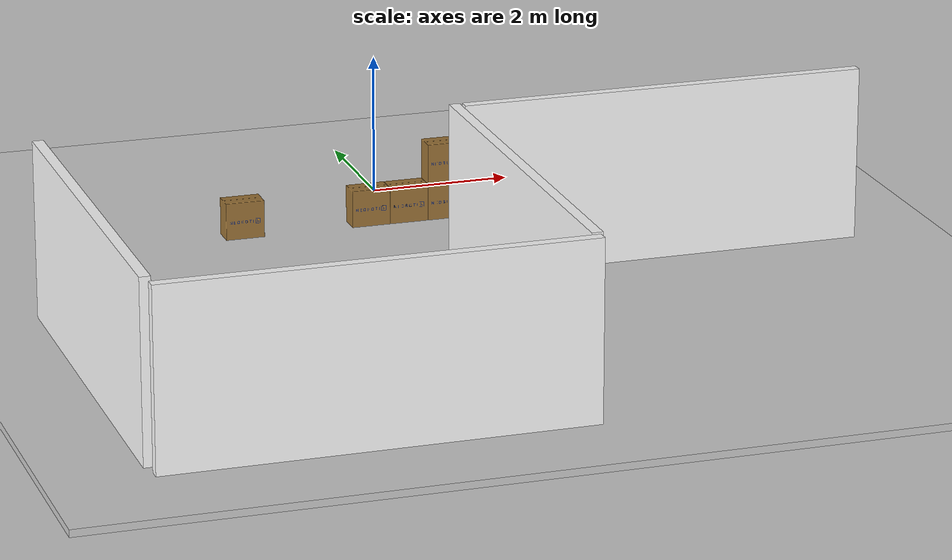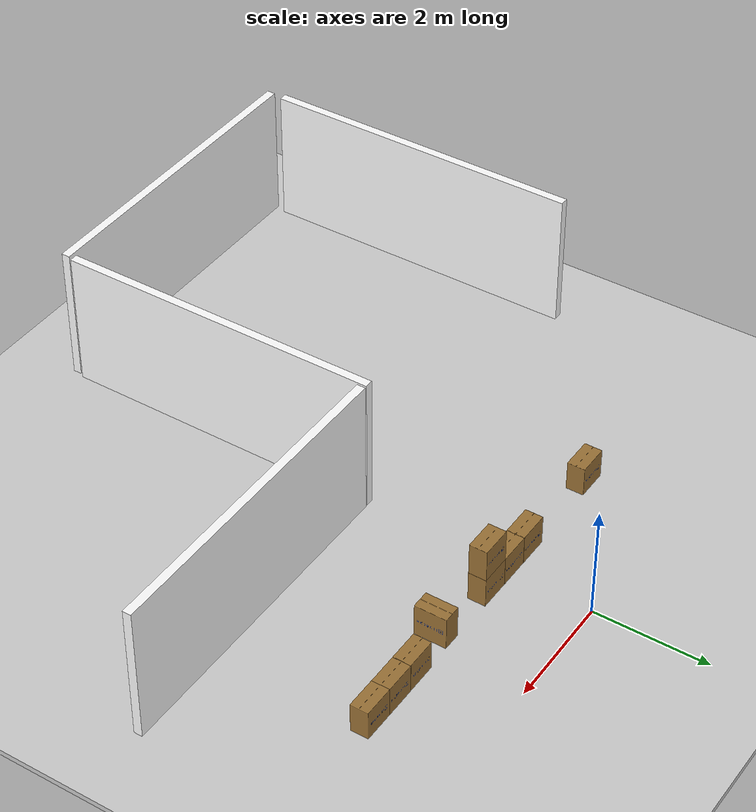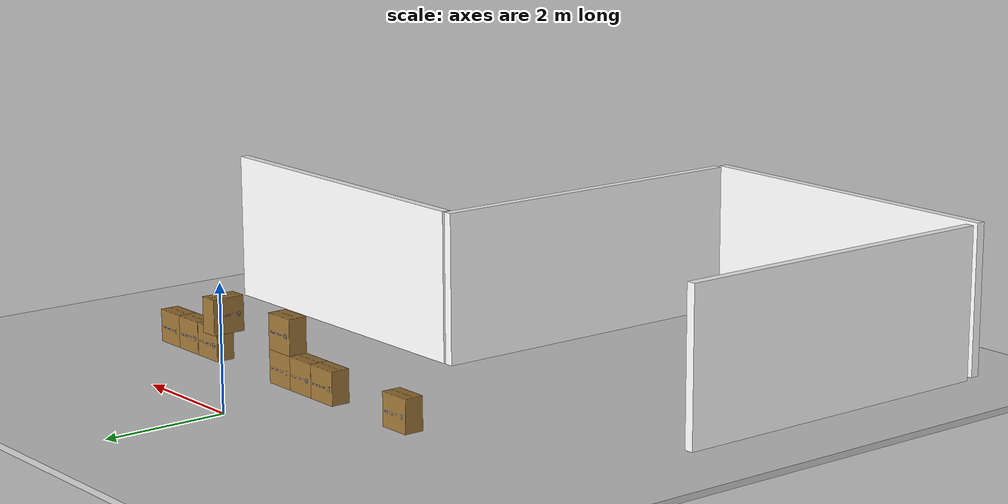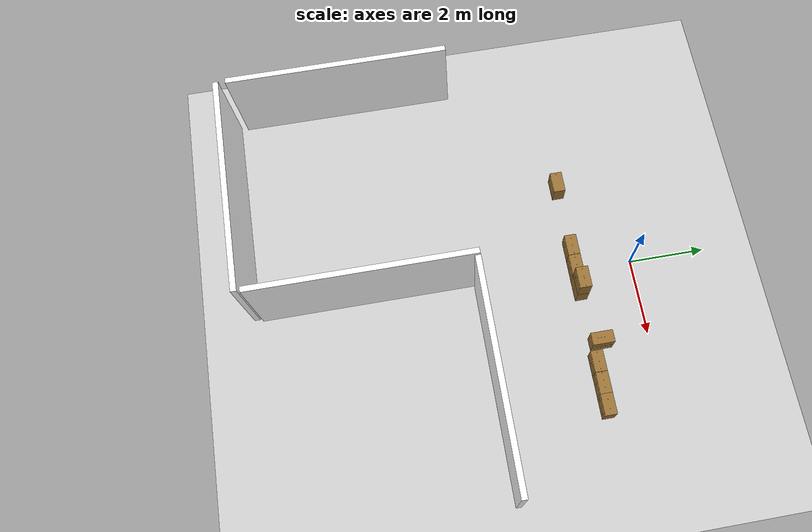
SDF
<sdf version="1.9">
 <world name="default">
  <model name="ground_plane">
   <static>true</static>
   <link name="link">
    <collision name="collision">
     <geometry><plane><normal>0 0 1</normal><size>100 100</size></plane></geometry>
    </collision>
    <visual name="visual">
     <geometry><plane><normal>0 0 1</normal><size>100 100</size></plane></geometry>
     <material>
      <ambient>0.8 0.8 0.8 1</ambient>
      <diffuse>0.8 0.8 0.8 1</diffuse>
      <specular>0.8 0.8 0.8 1</specular>
     </material>
    </visual>
    <inertial>
     <mass>1</mass>
     <inertia><ixx>1</ixx><ixy>0</ixy><ixz>0</ixz><iyy>1</iyy><iyz>0</iyz><izz>1</izz></inertia>
    </inertial>
   </link>
  </model>
  <model name="office_env_w3">
   <pose>2.8655 -4.162 1.25 0 -0 0</pose>
   <link name="Wall_10">
    <visual name="Wall_10_Visual_0">
     <geometry><box><size>5.733 0.15 2.5</size></box></geometry>
     <material><ambient>0.2 0.2 0.2 1</ambient><diffuse>1 1 1 1</diffuse><specular>1 1 1 1</specular></material>
     <meta><layer>0</layer></meta>
    </visual>
    <collision name="Wall_10_Collision_0"><geometry><box><size>5.733 0.15 2.5</size></box></geometry></collision>
    <inertial>
     <mass>1</mass>
     <inertia><ixx>1</ixx><ixy>0</ixy><ixz>0</ixz><iyy>1</iyy><iyz>0</iyz><izz>1</izz></inertia>
    </inertial>
   </link>
   <static>true</static>
  </model>
  <model name="office_env_w3_clone">
   <pose>-0.116895 -6.96099 1.25 0 -0 1.57</pose>
   <link name="Wall_10">
    <visual name="Wall_10_Visual_0">
     <geometry><box><size>5.733 0.15 2.5</size></box></geometry>
     <material><ambient>0.2 0.2 0.2 1</ambient><diffuse>1 1 1 1</diffuse><specular>1 1 1 1</specular></material>
     <meta><layer>0</layer></meta>
    </visual>
    <collision name="Wall_10_Collision_0"><geometry><box><size>5.733 0.15 2.5</size></box></geometry></collision>
    <inertial>
     <mass>1</mass>
     <inertia><ixx>1</ixx><ixy>0</ixy><ixz>0</ixz><iyy>1</iyy><iyz>0</iyz><izz>1</izz></inertia>
    </inertial>
   </link>
   <static>true</static>
  </model>
  <model name="office_env_w3_clone_clone">
   <pose>-5.82695 -6.85682 1.25 0 -0 1.57</pose>
   <link name="Wall_10">
    <visual name="Wall_10_Visual_0">
     <geometry><box><size>5.733 0.15 2.5</size></box></geometry>
     <material><ambient>0.2 0.2 0.2 1</ambient><diffuse>1 1 1 1</diffuse><specular>1 1 1 1</specular></material>
     <meta><layer>0</layer></meta>
    </visual>
    <collision name="Wall_10_Collision_0"><geometry><box><size>5.733 0.15 2.5</size></box></geometry></collision>
    <inertial>
     <mass>1</mass>
     <inertia><ixx>1</ixx><ixy>0</ixy><ixz>0</ixz><iyy>1</iyy><iyz>0</iyz><izz>1</izz></inertia>
    </inertial>
   </link>
   <static>true</static>
  </model>
  <model name="office_env_w3_clone_0">
   <pose>-2.96341 -9.9742 1.25 0 -0 0</pose>
   <link name="Wall_10">
    <visual name="Wall_10_Visual_0">
     <geometry><box><size>5.733 0.15 2.5</size></box></geometry>
     <material><ambient>0.2 0.2 0.2 1</ambient><diffuse>1 1 1 1</diffuse><specular>1 1 1 1</specular></material>
     <meta><layer>0</layer></meta>
    </visual>
    <collision name="Wall_10_Collision_0"><geometry><box><size>5.733 0.15 2.5</size></box></geometry></collision>
    <inertial>
     <mass>1</mass>
     <inertia><ixx>1</ixx><ixy>0</ixy><ixz>0</ixz><iyy>1</iyy><iyz>0</iyz><izz>1</izz></inertia>
    </inertial>
   </link>
   <static>true</static>
  </model>
  <model name="neobotix_box_3_2_2">
   <link name="link_1">
    <visual name="visual">
     <geometry>
      <mesh>
       <uri>file:///home/pradheep/iron_ws/src/neo_simulation2/models/neo_office_box/model://neo_office_box/meshes/model.dae</uri>
       <scale>0.1 0.1 0.1</scale>
      </mesh>
     </geometry>
    </visual>
    <collision name="collision">
     <geometry>
      <mesh>
       <uri>file:///home/pradheep/iron_ws/src/neo_simulation2/models/neo_office_box/model://neo_office_box/meshes/model.dae</uri>
       <scale>0.1 0.1 0.1</scale>
      </mesh>
     </geometry>
    </collision>
    <inertial>
     <mass>1</mass>
     <inertia><ixx>1</ixx><ixy>0</ixy><ixz>0</ixz><iyy>1</iyy><iyz>0</iyz><izz>1</izz></inertia>
    </inertial>
   </link>
   <pose>3.72429 -1.53119 0.294325 0 -0 1.57</pose>
   <static>false</static>
  </model>
  <model name="neobotix_box_3_2_2_1">
   <link name="link_1">
    <visual name="visual">
     <geometry>
      <mesh>
       <uri>file:///home/pradheep/iron_ws/src/neo_simulation2/models/neo_office_box/model://neo_office_box/meshes/model.dae</uri>
       <scale>0.1 0.1 0.1</scale>
      </mesh>
     </geometry>
    </visual>
    <collision name="collision">
     <geometry>
      <mesh>
       <uri>file:///home/pradheep/iron_ws/src/neo_simulation2/models/neo_office_box/model://neo_office_box/meshes/model.dae</uri>
       <scale>0.1 0.1 0.1</scale>
      </mesh>
     </geometry>
    </collision>
    <inertial>
     <mass>1</mass>
     <inertia><ixx>1</ixx><ixy>0</ixy><ixz>0</ixz><iyy>1</iyy><iyz>0</iyz><izz>1</izz></inertia>
    </inertial>
   </link>
   <pose>3.17712 -1.52963 0.294325 0 -0 1.57</pose>
   <static>false</static>
  </model>
  <model name="neobotix_box_3_2_2_1_1">
   <link name="link_1">
    <visual name="visual">
     <geometry>
      <mesh>
       <uri>file:///home/pradheep/iron_ws/src/neo_simulation2/models/neo_office_box/model://neo_office_box/meshes/model.dae</uri>
       <scale>0.1 0.1 0.1</scale>
      </mesh>
     </geometry>
    </visual>
    <collision name="collision">
     <geometry>
      <mesh>
       <uri>file:///home/pradheep/iron_ws/src/neo_simulation2/models/neo_office_box/model://neo_office_box/meshes/model.dae</uri>
       <scale>0.1 0.1 0.1</scale>
      </mesh>
     </geometry>
    </collision>
    <inertial>
     <mass>1</mass>
     <inertia><ixx>1</ixx><ixy>0</ixy><ixz>0</ixz><iyy>1</iyy><iyz>0</iyz><izz>1</izz></inertia>
    </inertial>
   </link>
   <pose>3.17712 -1.52963 0.294325 0 -0 1.57</pose>
   <static>false</static>
  </model>
  <model name="neobotix_box_3_2_2_1_1_1">
   <link name="link_1">
    <visual name="visual">
     <geometry>
      <mesh>
       <uri>file:///home/pradheep/iron_ws/src/neo_simulation2/models/neo_office_box/model://neo_office_box/meshes/model.dae</uri>
       <scale>0.1 0.1 0.1</scale>
      </mesh>
     </geometry>
    </visual>
    <collision name="collision">
     <geometry>
      <mesh>
       <uri>file:///home/pradheep/iron_ws/src/neo_simulation2/models/neo_office_box/model://neo_office_box/meshes/model.dae</uri>
       <scale>0.1 0.1 0.1</scale>
      </mesh>
     </geometry>
    </collision>
    <inertial>
     <mass>1</mass>
     <inertia><ixx>1</ixx><ixy>0</ixy><ixz>0</ixz><iyy>1</iyy><iyz>0</iyz><izz>1</izz></inertia>
    </inertial>
   </link>
   <pose>2.61748 -1.53101 0.294325 0 -0 1.57</pose>
   <static>false</static>
  </model>
  <model name="neobotix_box_3_1_1_1">
   <link name="link_1">
    <visual name="visual">
     <geometry>
      <mesh>
       <uri>file:///home/pradheep/iron_ws/src/neo_simulation2/models/neo_office_box/model://neo_office_box/meshes/model.dae</uri>
       <scale>0.1 0.1 0.1</scale>
      </mesh>
     </geometry>
    </visual>
    <collision name="collision">
     <geometry>
      <mesh>
       <uri>file:///home/pradheep/iron_ws/src/neo_simulation2/models/neo_office_box/model://neo_office_box/meshes/model.dae</uri>
       <scale>0.1 0.1 0.1</scale>
      </mesh>
     </geometry>
    </collision>
    <inertial>
     <mass>1</mass>
     <inertia><ixx>1</ixx><ixy>0</ixy><ixz>0</ixz><iyy>1</iyy><iyz>0</iyz><izz>1</izz></inertia>
    </inertial>
   </link>
   <pose>2.17786 -1.4122 0.86811 0 -0 0</pose>
   <static>false</static>
  </model>
  <model name="neobotix_box_3_2_1_1_2">
   <link name="link_1">
    <visual name="visual">
     <geometry>
      <mesh>
       <uri>file:///home/pradheep/iron_ws/src/neo_simulation2/models/neo_office_box/model://neo_office_box/meshes/model.dae</uri>
       <scale>0.1 0.1 0.1</scale>
      </mesh>
     </geometry>
    </visual>
    <collision name="collision">
     <geometry>
      <mesh>
       <uri>file:///home/pradheep/iron_ws/src/neo_simulation2/models/neo_office_box/model://neo_office_box/meshes/model.dae</uri>
       <scale>0.1 0.1 0.1</scale>
      </mesh>
     </geometry>
    </collision>
    <inertial>
     <mass>1</mass>
     <inertia><ixx>1</ixx><ixy>0</ixy><ixz>0</ixz><iyy>1</iyy><iyz>0</iyz><izz>1</izz></inertia>
    </inertial>
   </link>
   <pose>0.556968 -1.52968 0.872435 0 -0 1.57</pose>
   <static>false</static>
  </model>
  <model name="ground_plane_1">
   <static>true</static>
   <link name="link">
    <collision name="collision">
     <geometry><plane><normal>0 0 1</normal><size>100 100</size></plane></geometry>
    </collision>
    <visual name="visual">
     <geometry><plane><normal>0 0 1</normal><size>100 100</size></plane></geometry>
     <material>
      <ambient>0.8 0.8 0.8 1</ambient>
      <diffuse>0.8 0.8 0.8 1</diffuse>
      <specular>0.8 0.8 0.8 1</specular>
     </material>
    </visual>
    <inertial>
     <mass>1</mass>
     <inertia><ixx>1</ixx><ixy>0</ixy><ixz>0</ixz><iyy>1</iyy><iyz>0</iyz><izz>1</izz></inertia>
    </inertial>
   </link>
   <pose>-0.115089 -1.42822 0 0 -0 0</pose>
  </model>
  <model name="neobotix_box_3_2_1_1_2_1">
   <link name="link_1">
    <visual name="visual">
     <geometry>
      <mesh>
       <uri>file:///home/pradheep/iron_ws/src/neo_simulation2/models/neo_office_box/model://neo_office_box/meshes/model.dae</uri>
       <scale>0.1 0.1 0.1</scale>
      </mesh>
     </geometry>
    </visual>
    <collision name="collision">
     <geometry>
      <mesh>
       <uri>file:///home/pradheep/iron_ws/src/neo_simulation2/models/neo_office_box/model://neo_office_box/meshes/model.dae</uri>
       <scale>0.1 0.1 0.1</scale>
      </mesh>
     </geometry>
    </collision>
    <inertial>
     <mass>1</mass>
     <inertia><ixx>1</ixx><ixy>0</ixy><ixz>0</ixz><iyy>1</iyy><iyz>0</iyz><izz>1</izz></inertia>
    </inertial>
   </link>
   <pose>0.001747 -1.52761 0.294325 0 -0 1.57</pose>
   <static>false</static>
  </model>
  <model name="neobotix_box_3_2_1_1_2_1_1_1">
   <link name="link_1">
    <visual name="visual">
     <geometry>
      <mesh>
       <uri>file:///home/pradheep/iron_ws/src/neo_simulation2/models/neo_office_box/model://neo_office_box/meshes/model.dae</uri>
       <scale>0.1 0.1 0.1</scale>
      </mesh>
     </geometry>
    </visual>
    <collision name="collision">
     <geometry>
      <mesh>
       <uri>file:///home/pradheep/iron_ws/src/neo_simulation2/models/neo_office_box/model://neo_office_box/meshes/model.dae</uri>
       <scale>0.1 0.1 0.1</scale>
      </mesh>
     </geometry>
    </collision>
    <inertial>
     <mass>1</mass>
     <inertia><ixx>1</ixx><ixy>0</ixy><ixz>0</ixz><iyy>1</iyy><iyz>0</iyz><izz>1</izz></inertia>
    </inertial>
   </link>
   <pose>-0.557713 -1.52582 0.294325 0 -0 1.57</pose>
   <static>false</static>
  </model>
  <model name="neobotix_box_3_2_1_1_2_1_1_2">
   <link name="link_1">
    <visual name="visual">
     <geometry>
      <mesh>
       <uri>file:///home/pradheep/iron_ws/src/neo_simulation2/models/neo_office_box/model://neo_office_box/meshes/model.dae</uri>
       <scale>0.1 0.1 0.1</scale>
      </mesh>
     </geometry>
    </visual>
    <collision name="collision">
     <geometry>
      <mesh>
       <uri>file:///home/pradheep/iron_ws/src/neo_simulation2/models/neo_office_box/model://neo_office_box/meshes/model.dae</uri>
       <scale>0.1 0.1 0.1</scale>
      </mesh>
     </geometry>
    </collision>
    <inertial>
     <mass>1</mass>
     <inertia><ixx>1</ixx><ixy>0</ixy><ixz>0</ixz><iyy>1</iyy><iyz>0</iyz><izz>1</izz></inertia>
    </inertial>
   </link>
   <pose>-2.39783 -1.52546 0.294325 0 -0 1.57</pose>
   <static>false</static>
  </model>
  <model name="neobotix_box_3_2_1_1_2_2">
   <link name="link_1">
    <visual name="visual">
     <geometry>
      <mesh>
       <uri>file:///home/pradheep/iron_ws/src/neo_simulation2/models/neo_office_box/model://neo_office_box/meshes/model.dae</uri>
       <scale>0.1 0.1 0.1</scale>
      </mesh>
     </geometry>
    </visual>
    <collision name="collision">
     <geometry>
      <mesh>
       <uri>file:///home/pradheep/iron_ws/src/neo_simulation2/models/neo_office_box/model://neo_office_box/meshes/model.dae</uri>
       <scale>0.1 0.1 0.1</scale>
      </mesh>
     </geometry>
    </collision>
    <inertial>
     <mass>1</mass>
     <inertia><ixx>1</ixx><ixy>0</ixy><ixz>0</ixz><iyy>1</iyy><iyz>0</iyz><izz>1</izz></inertia>
    </inertial>
   </link>
   <pose>0.556968 -1.52968 0.294325 0 -0 1.57</pose>
   <static>false</static>
  </model>
 </world>
</sdf>
